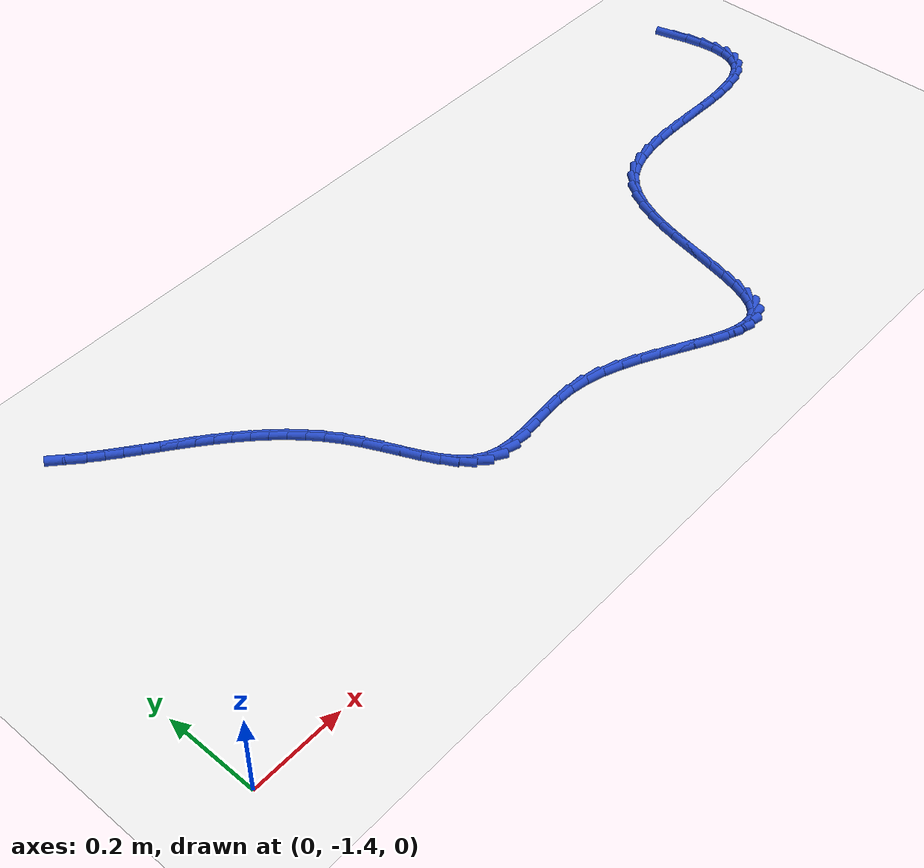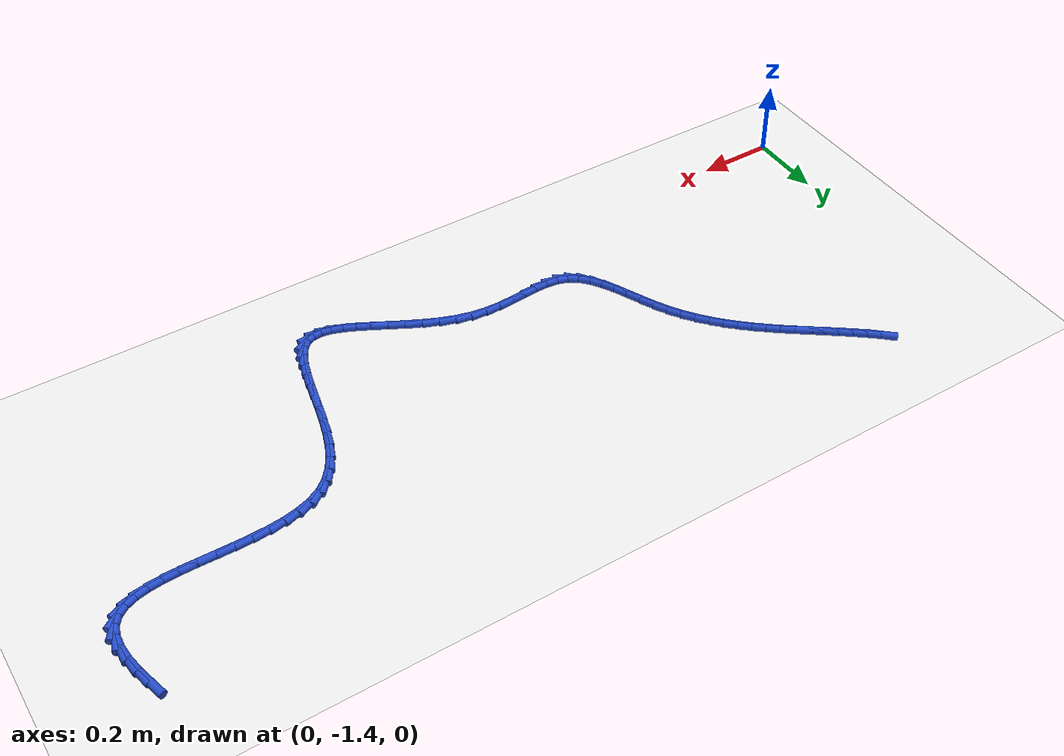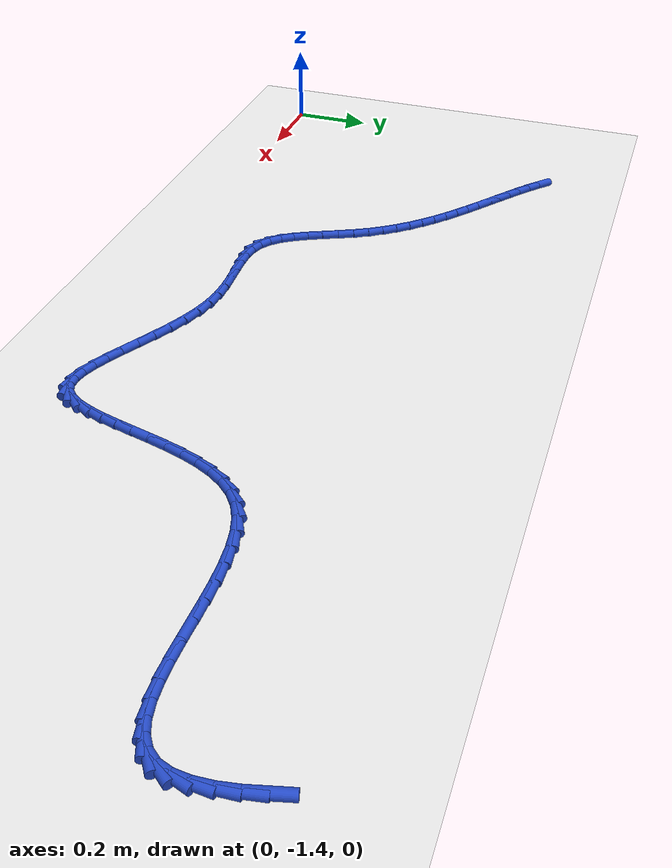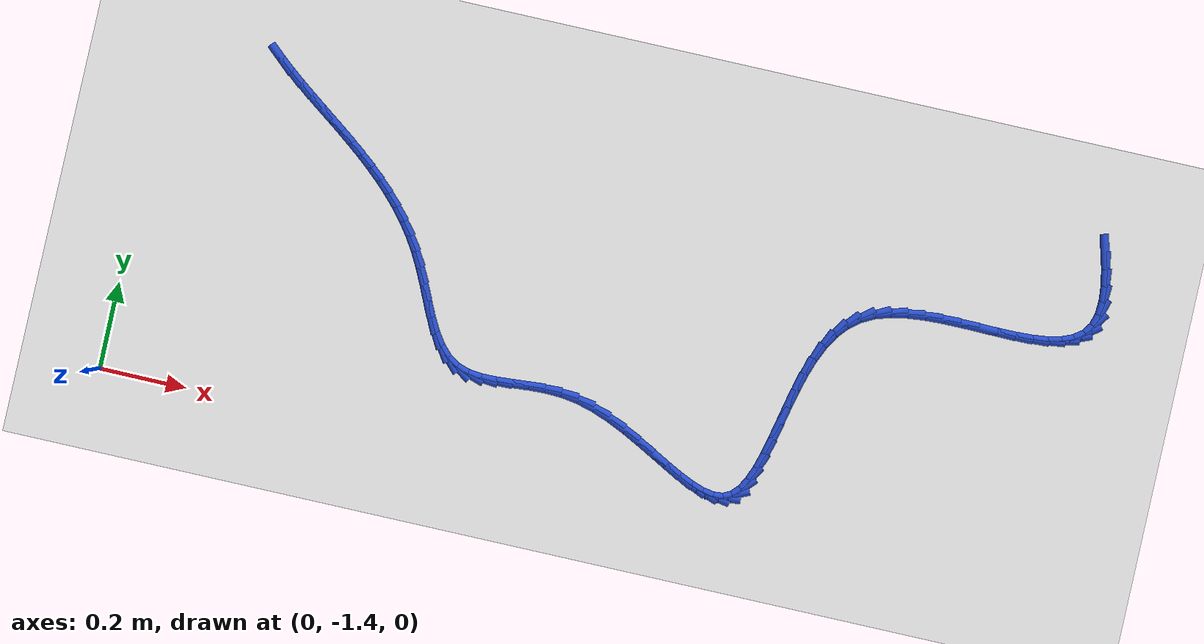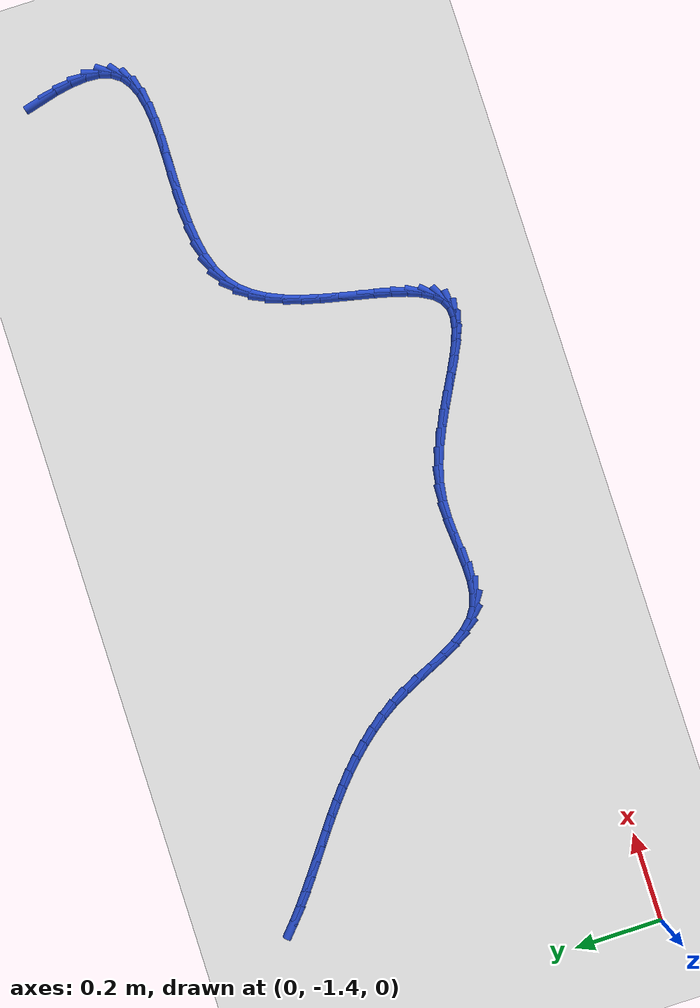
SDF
<sdf version="1.6">
 <world name="default">
  <model name="ground_plane">
   <static>1</static>
   <link name="link">
    <collision name="collision">
     <geometry><plane><normal>0 0 1</normal><size>100 100</size></plane></geometry>
     <surface><friction><ode><mu>100</mu><mu2>50</mu2></ode></friction></surface>
    </collision>
    <visual name="visual">
     <cast_shadows>0</cast_shadows>
     <geometry><plane><normal>0 0 1</normal><size>100 100</size></plane></geometry>
     <material>
      <script><uri>file://media/materials/scripts/gazebo.material</uri><name>Gazebo/WhiteGlow</name></script>
     </material>
    </visual>
   </link>
  </model>
  <model name="line">
   <link name="link_133">
    <pose>2.1537466226134705 -0.6418802313299397 0.01 0 1.57 -1.3056347034443903</pose>
    <collision name="collision">
     <geometry><cylinder><radius>0.01</radius><length>0.08</length></cylinder></geometry>
    </collision>
    <visual name="visual">
     <material>
      <script><name>Gazebo/Blue</name><uri>file://media/materials/scripts/gazebo.material</uri></script>
     </material>
     <geometry><cylinder><radius>0.01</radius><length>0.08</length></cylinder></geometry>
    </visual>
   </link>
   <link name="link_134">
    <pose>2.1640409524322584 -0.679788900097958 0.01 0 1.57 -1.3802247581851608</pose>
    <collision name="collision">
     <geometry><cylinder><radius>0.01</radius><length>0.08</length></cylinder></geometry>
    </collision>
    <visual name="visual">
     <material>
      <script><name>Gazebo/Blue</name><uri>file://media/materials/scripts/gazebo.material</uri></script>
     </material>
     <geometry><cylinder><radius>0.01</radius><length>0.08</length></cylinder></geometry>
    </visual>
   </link>
   <link name="link_135">
    <pose>2.1712782300741167 -0.7173047346959063 0.01 0 1.57 -1.4829774302239795</pose>
    <collision name="collision">
     <geometry><cylinder><radius>0.01</radius><length>0.08</length></cylinder></geometry>
    </collision>
    <visual name="visual">
     <material>
      <script><name>Gazebo/Blue</name><uri>file://media/materials/scripts/gazebo.material</uri></script>
     </material>
     <geometry><cylinder><radius>0.01</radius><length>0.08</length></cylinder></geometry>
    </visual>
   </link>
   <link name="link_136">
    <pose>2.1744094782992773 -0.7528687721009178 0.01 0 1.57 1.5077426891027257</pose>
    <collision name="collision">
     <geometry><cylinder><radius>0.01</radius><length>0.08</length></cylinder></geometry>
    </collision>
    <visual name="visual">
     <material>
      <script><name>Gazebo/Blue</name><uri>file://media/materials/scripts/gazebo.material</uri></script>
     </material>
     <geometry><cylinder><radius>0.01</radius><length>0.08</length></cylinder></geometry>
    </visual>
   </link>
   <link name="link_137">
    <pose>2.1723857198679744 -0.7849220492901284 0.01 0 1.57 1.274922022180767</pose>
    <collision name="collision">
     <geometry><cylinder><radius>0.01</radius><length>0.08</length></cylinder></geometry>
    </collision>
    <visual name="visual">
     <material>
      <script><name>Gazebo/Blue</name><uri>file://media/materials/scripts/gazebo.material</uri></script>
     </material>
     <geometry><cylinder><radius>0.01</radius><length>0.08</length></cylinder></geometry>
    </visual>
   </link>
   <link name="link_138">
    <pose>2.16415982929627 -0.8119079750838654 0.01 0 1.57 0.951115221271168</pose>
    <collision name="collision">
     <geometry><cylinder><radius>0.01</radius><length>0.08</length></cylinder></geometry>
    </collision>
    <visual name="visual">
     <material>
      <script><name>Gazebo/Blue</name><uri>file://media/materials/scripts/gazebo.material</uri></script>
     </material>
     <geometry><cylinder><radius>0.01</radius><length>0.08</length></cylinder></geometry>
    </visual>
   </link>
   <link name="link_139">
    <pose>2.1491802106205284 -0.8329046631052074 0.01 0 1.57 0.6352624273656253</pose>
    <collision name="collision">
     <geometry><cylinder><radius>0.01</radius><length>0.08</length></cylinder></geometry>
    </collision>
    <visual name="visual">
     <material>
      <script><name>Gazebo/Blue</name><uri>file://media/materials/scripts/gazebo.material</uri></script>
     </material>
     <geometry><cylinder><radius>0.01</radius><length>0.08</length></cylinder></geometry>
    </visual>
   </link>
   <link name="link_140">
    <pose>2.1280562923119994 -0.8484773387531183 0.01 0 1.57 0.39118199450994956</pose>
    <collision name="collision">
     <geometry><cylinder><radius>0.01</radius><length>0.08</length></cylinder></geometry>
    </collision>
    <visual name="visual">
     <material>
      <script><name>Gazebo/Blue</name><uri>file://media/materials/scripts/gazebo.material</uri></script>
     </material>
     <geometry><cylinder><radius>0.01</radius><length>0.08</length></cylinder></geometry>
    </visual>
   </link>
   <link name="link_141">
    <pose>2.101563563557912 -0.8594039282438881 0.01 0 1.57 0.2232752622472971</pose>
    <collision name="collision">
     <geometry><cylinder><radius>0.01</radius><length>0.08</length></cylinder></geometry>
    </collision>
    <visual name="visual">
     <material>
      <script><name>Gazebo/Blue</name><uri>file://media/materials/scripts/gazebo.material</uri></script>
     </material>
     <geometry><cylinder><radius>0.01</radius><length>0.08</length></cylinder></geometry>
    </visual>
   </link>
   <link name="link_142">
    <pose>2.07047751354549 -0.8664623577938069 0.01 0 1.57 0.11320318349492298</pose>
    <collision name="collision">
     <geometry><cylinder><radius>0.01</radius><length>0.08</length></cylinder></geometry>
    </collision>
    <visual name="visual">
     <material>
      <script><name>Gazebo/Blue</name><uri>file://media/materials/scripts/gazebo.material</uri></script>
     </material>
     <geometry><cylinder><radius>0.01</radius><length>0.08</length></cylinder></geometry>
    </visual>
   </link>
   <link name="link_143">
    <pose>2.0355736314619617 -0.8704305536191651 0.01 0 1.57 0.043610094030240944</pose>
    <collision name="collision">
     <geometry><cylinder><radius>0.01</radius><length>0.08</length></cylinder></geometry>
    </collision>
    <visual name="visual">
     <material>
      <script><name>Gazebo/Blue</name><uri>file://media/materials/scripts/gazebo.material</uri></script>
     </material>
     <geometry><cylinder><radius>0.01</radius><length>0.08</length></cylinder></geometry>
    </visual>
   </link>
   <link name="link_144">
    <pose>1.9976274064945503 -0.8720864419362525 0.01 0 1.57 0.0030215705775752996</pose>
    <collision name="collision">
     <geometry><cylinder><radius>0.01</radius><length>0.08</length></cylinder></geometry>
    </collision>
    <visual name="visual">
     <material>
      <script><name>Gazebo/Blue</name><uri>file://media/materials/scripts/gazebo.material</uri></script>
     </material>
     <geometry><cylinder><radius>0.01</radius><length>0.08</length></cylinder></geometry>
    </visual>
   </link>
   <link name="link_145">
    <pose>1.9574143278304852 -0.8722079489613597 0.01 0 1.57 -0.015223773511048446</pose>
    <collision name="collision">
     <geometry><cylinder><radius>0.01</radius><length>0.08</length></cylinder></geometry>
    </collision>
    <visual name="visual">
     <material>
      <script><name>Gazebo/Blue</name><uri>file://media/materials/scripts/gazebo.material</uri></script>
     </material>
     <geometry><cylinder><radius>0.01</radius><length>0.08</length></cylinder></geometry>
    </visual>
   </link>
   <link name="link_146">
    <pose>1.9157098846569915 -0.8715730009107765 0.01 0 1.57 -0.014460856694412853</pose>
    <collision name="collision">
     <geometry><cylinder><radius>0.01</radius><length>0.08</length></cylinder></geometry>
    </collision>
    <visual name="visual">
     <material>
      <script><name>Gazebo/Blue</name><uri>file://media/materials/scripts/gazebo.material</uri></script>
     </material>
     <geometry><cylinder><radius>0.01</radius><length>0.08</length></cylinder></geometry>
    </visual>
   </link>
   <link name="link_147">
    <pose>1.8732895661612945 -0.8709595240007932 0.01 0 1.57 0.004388955630817774</pose>
    <collision name="collision">
     <geometry><cylinder><radius>0.01</radius><length>0.08</length></cylinder></geometry>
    </collision>
    <visual name="visual">
     <material>
      <script><name>Gazebo/Blue</name><uri>file://media/materials/scripts/gazebo.material</uri></script>
     </material>
     <geometry><cylinder><radius>0.01</radius><length>0.08</length></cylinder></geometry>
    </visual>
   </link>
   <link name="link_148">
    <pose>1.8309288615306205 -0.8711454444476999 0.01 0 1.57 0.04243612121368443</pose>
    <collision name="collision">
     <geometry><cylinder><radius>0.01</radius><length>0.08</length></cylinder></geometry>
    </collision>
    <visual name="visual">
     <material>
      <script><name>Gazebo/Blue</name><uri>file://media/materials/scripts/gazebo.material</uri></script>
     </material>
     <geometry><cylinder><radius>0.01</radius><length>0.08</length></cylinder></geometry>
    </visual>
   </link>
   <link name="link_149">
    <pose>1.7894032599521963 -0.8729086884677867 0.01 0 1.57 0.10281773129148163</pose>
    <collision name="collision">
     <geometry><cylinder><radius>0.01</radius><length>0.08</length></cylinder></geometry>
    </collision>
    <visual name="visual">
     <material>
      <script><name>Gazebo/Blue</name><uri>file://media/materials/scripts/gazebo.material</uri></script>
     </material>
     <geometry><cylinder><radius>0.01</radius><length>0.08</length></cylinder></geometry>
    </visual>
   </link>
   <link name="link_150">
    <pose>1.7494882506132479 -0.8770271822773434 0.01 0 1.57 0.19087639671117715</pose>
    <collision name="collision">
     <geometry><cylinder><radius>0.01</radius><length>0.08</length></cylinder></geometry>
    </collision>
    <visual name="visual">
     <material>
      <script><name>Gazebo/Blue</name><uri>file://media/materials/scripts/gazebo.material</uri></script>
     </material>
     <geometry><cylinder><radius>0.01</radius><length>0.08</length></cylinder></geometry>
    </visual>
   </link>
   <link name="link_151">
    <pose>1.7119593227010022 -0.884278852092661 0.01 0 1.57 0.3140576909112532</pose>
    <collision name="collision">
     <geometry><cylinder><radius>0.01</radius><length>0.08</length></cylinder></geometry>
    </collision>
    <visual name="visual">
     <material>
      <script><name>Gazebo/Blue</name><uri>file://media/materials/scripts/gazebo.material</uri></script>
     </material>
     <geometry><cylinder><radius>0.01</radius><length>0.08</length></cylinder></geometry>
    </visual>
   </link>
   <link name="link_152">
    <pose>1.6775919654026836 -0.8954416241300288 0.01 0 1.57 0.48024448063198616</pose>
    <collision name="collision">
     <geometry><cylinder><radius>0.01</radius><length>0.08</length></cylinder></geometry>
    </collision>
    <visual name="visual">
     <material>
      <script><name>Gazebo/Blue</name><uri>file://media/materials/scripts/gazebo.material</uri></script>
     </material>
     <geometry><cylinder><radius>0.01</radius><length>0.08</length></cylinder></geometry>
    </visual>
   </link>
   <link name="link_153">
    <pose>1.6471616676566097 -0.9112934243527487 0.01 0 1.57 0.682370877430309</pose>
    <collision name="collision">
     <geometry><cylinder><radius>0.01</radius><length>0.08</length></cylinder></geometry>
    </collision>
    <visual name="visual">
     <material>
      <script><name>Gazebo/Blue</name><uri>file://media/materials/scripts/gazebo.material</uri></script>
     </material>
     <geometry><cylinder><radius>0.01</radius><length>0.08</length></cylinder></geometry>
    </visual>
   </link>
   <link name="link_154">
    <pose>1.6212138650071393 -0.9323783541835555 0.01 0 1.57 0.8719273073883838</pose>
    <collision name="collision">
     <geometry><cylinder><radius>0.01</radius><length>0.08</length></cylinder></geometry>
    </collision>
    <visual name="visual">
     <material>
      <script><name>Gazebo/Blue</name><uri>file://media/materials/scripts/gazebo.material</uri></script>
     </material>
     <geometry><cylinder><radius>0.01</radius><length>0.08</length></cylinder></geometry>
    </visual>
   </link>
   <link name="link_155">
    <pose>1.5994019697087545 -0.9583338692777076 0.01 0 1.57 1.0281323206443092</pose>
    <collision name="collision">
     <geometry><cylinder><radius>0.01</radius><length>0.08</length></cylinder></geometry>
    </collision>
    <visual name="visual">
     <material>
      <script><name>Gazebo/Blue</name><uri>file://media/materials/scripts/gazebo.material</uri></script>
     </material>
     <geometry><cylinder><radius>0.01</radius><length>0.08</length></cylinder></geometry>
    </visual>
   </link>
   <link name="link_156">
    <pose>1.581163221161723 -0.9885777088261687 0.01 0 1.57 1.149145606789475</pose>
    <collision name="collision">
     <geometry><cylinder><radius>0.01</radius><length>0.08</length></cylinder></geometry>
    </collision>
    <visual name="visual">
     <material>
      <script><name>Gazebo/Blue</name><uri>file://media/materials/scripts/gazebo.material</uri></script>
     </material>
     <geometry><cylinder><radius>0.01</radius><length>0.08</length></cylinder></geometry>
    </visual>
   </link>
   <link name="link_157">
    <pose>1.5659348587663113 -1.0225276120199023 0.01 0 1.57 1.2387844283992777</pose>
    <collision name="collision">
     <geometry><cylinder><radius>0.01</radius><length>0.08</length></cylinder></geometry>
    </collision>
    <visual name="visual">
     <material>
      <script><name>Gazebo/Blue</name><uri>file://media/materials/scripts/gazebo.material</uri></script>
     </material>
     <geometry><cylinder><radius>0.01</radius><length>0.08</length></cylinder></geometry>
    </visual>
   </link>
   <link name="link_158">
    <pose>1.5531540802134147 -1.059597591617268 0.01 0 1.57 1.300902866138402</pose>
    <collision name="collision">
     <geometry><cylinder><radius>0.01</radius><length>0.08</length></cylinder></geometry>
    </collision>
    <visual name="visual">
     <material>
      <script><name>Gazebo/Blue</name><uri>file://media/materials/scripts/gazebo.material</uri></script>
     </material>
     <geometry><cylinder><radius>0.01</radius><length>0.08</length></cylinder></geometry>
    </visual>
   </link>
   <link name="link_159">
    <pose>1.5422557419068035 -1.0989924831980165 0.01 0 1.57 1.3390138367171447</pose>
    <collision name="collision">
     <geometry><cylinder><radius>0.01</radius><length>0.08</length></cylinder></geometry>
    </collision>
    <visual name="visual">
     <material>
      <script><name>Gazebo/Blue</name><uri>file://media/materials/scripts/gazebo.material</uri></script>
     </material>
     <geometry><cylinder><radius>0.01</radius><length>0.08</length></cylinder></geometry>
    </visual>
   </link>
   <link name="link_160">
    <pose>1.532671161070322 -1.1396009220500445 0.01 0 1.57 1.3568441020129873</pose>
    <collision name="collision">
     <geometry><cylinder><radius>0.01</radius><length>0.08</length></cylinder></geometry>
    </collision>
    <visual name="visual">
     <material>
      <script><name>Gazebo/Blue</name><uri>file://media/materials/scripts/gazebo.material</uri></script>
     </material>
     <geometry><cylinder><radius>0.01</radius><length>0.08</length></cylinder></geometry>
    </visual>
   </link>
   <link name="link_161">
    <pose>1.523831360742858 -1.1802852601497034 0.01 0 1.57 1.3555215946864065</pose>
    <collision name="collision">
     <geometry><cylinder><radius>0.01</radius><length>0.08</length></cylinder></geometry>
    </collision>
    <visual name="visual">
     <material>
      <script><name>Gazebo/Blue</name><uri>file://media/materials/scripts/gazebo.material</uri></script>
     </material>
     <geometry><cylinder><radius>0.01</radius><length>0.08</length></cylinder></geometry>
    </visual>
   </link>
   <link name="link_162">
    <pose>1.5151673639632999 -1.2199078494733469 0.01 0 1.57 1.3333420079791676</pose>
    <collision name="collision">
     <geometry><cylinder><radius>0.01</radius><length>0.08</length></cylinder></geometry>
    </collision>
    <visual name="visual">
     <material>
      <script><name>Gazebo/Blue</name><uri>file://media/materials/scripts/gazebo.material</uri></script>
     </material>
     <geometry><cylinder><radius>0.01</radius><length>0.08</length></cylinder></geometry>
    </visual>
   </link>
   <link name="link_163">
    <pose>1.506110193770535 -1.2573310419973247 0.01 0 1.57 1.2849073615390159</pose>
    <collision name="collision">
     <geometry><cylinder><radius>0.01</radius><length>0.08</length></cylinder></geometry>
    </collision>
    <visual name="visual">
     <material>
      <script><name>Gazebo/Blue</name><uri>file://media/materials/scripts/gazebo.material</uri></script>
     </material>
     <geometry><cylinder><radius>0.01</radius><length>0.08</length></cylinder></geometry>
    </visual>
   </link>
   <link name="link_164">
    <pose>1.4960908732034524 -1.2914171896979898 0.01 0 1.57 1.198882200945937</pose>
    <collision name="collision">
     <geometry><cylinder><radius>0.01</radius><length>0.08</length></cylinder></geometry>
    </collision>
    <visual name="visual">
     <material>
      <script><name>Gazebo/Blue</name><uri>file://media/materials/scripts/gazebo.material</uri></script>
     </material>
     <geometry><cylinder><radius>0.01</radius><length>0.08</length></cylinder></geometry>
    </visual>
   </link>
   <link name="link_165">
    <pose>1.4845404253009402 -1.3210286445516954 0.01 0 1.57 1.0536385229514893</pose>
    <collision name="collision">
     <geometry><cylinder><radius>0.01</radius><length>0.08</length></cylinder></geometry>
    </collision>
    <visual name="visual">
     <material>
      <script><name>Gazebo/Blue</name><uri>file://media/materials/scripts/gazebo.material</uri></script>
     </material>
     <geometry><cylinder><radius>0.01</radius><length>0.08</length></cylinder></geometry>
    </visual>
   </link>
   <link name="link_166">
    <pose>1.470889873101886 -1.3450277585347934 0.01 0 1.57 0.813080277282421</pose>
    <collision name="collision">
     <geometry><cylinder><radius>0.01</radius><length>0.08</length></cylinder></geometry>
    </collision>
    <visual name="visual">
     <material>
      <script><name>Gazebo/Blue</name><uri>file://media/materials/scripts/gazebo.material</uri></script>
     </material>
     <geometry><cylinder><radius>0.01</radius><length>0.08</length></cylinder></geometry>
    </visual>
   </link>
   <link name="link_167">
    <pose>1.454570239645179 -1.3622768836236345 0.01 0 1.57 0.45141391494569444</pose>
    <collision name="collision">
     <geometry><cylinder><radius>0.01</radius><length>0.08</length></cylinder></geometry>
    </collision>
    <visual name="visual">
     <material>
      <script><name>Gazebo/Blue</name><uri>file://media/materials/scripts/gazebo.material</uri></script>
     </material>
     <geometry><cylinder><radius>0.01</radius><length>0.08</length></cylinder></geometry>
    </visual>
   </link>
   <link name="link_168">
    <pose>1.4350506480031302 -1.3717399835958548 0.01 0 1.57 0.08431067364155885</pose>
    <collision name="collision">
     <geometry><cylinder><radius>0.01</radius><length>0.08</length></cylinder></geometry>
    </collision>
    <visual name="visual">
     <material>
      <script><name>Gazebo/Blue</name><uri>file://media/materials/scripts/gazebo.material</uri></script>
     </material>
     <geometry><cylinder><radius>0.01</radius><length>0.08</length></cylinder></geometry>
    </visual>
   </link>
   <link name="link_169">
    <pose>1.4122813717576201 -1.3736642381628372 0.01 0 1.57 -0.1726440783970736</pose>
    <collision name="collision">
     <geometry><cylinder><radius>0.01</radius><length>0.08</length></cylinder></geometry>
    </collision>
    <visual name="visual">
     <material>
      <script><name>Gazebo/Blue</name><uri>file://media/materials/scripts/gazebo.material</uri></script>
     </material>
     <geometry><cylinder><radius>0.01</radius><length>0.08</length></cylinder></geometry>
    </visual>
   </link>
   <link name="link_170">
    <pose>1.3865422817054798 -1.369175854262442 0.01 0 1.57 -0.33069998500179243</pose>
    <collision name="collision">
     <geometry><cylinder><radius>0.01</radius><length>0.08</length></cylinder></geometry>
    </collision>
    <visual name="visual">
     <material>
      <script><name>Gazebo/Blue</name><uri>file://media/materials/scripts/gazebo.material</uri></script>
     </material>
     <geometry><cylinder><radius>0.01</radius><length>0.08</length></cylinder></geometry>
    </visual>
   </link>
   <link name="link_171">
    <pose>1.3581196715488089 -1.3594181685543418 0.01 0 1.57 -0.42325115853130213</pose>
    <collision name="collision">
     <geometry><cylinder><radius>0.01</radius><length>0.08</length></cylinder></geometry>
    </collision>
    <visual name="visual">
     <material>
      <script><name>Gazebo/Blue</name><uri>file://media/materials/scripts/gazebo.material</uri></script>
     </material>
     <geometry><cylinder><radius>0.01</radius><length>0.08</length></cylinder></geometry>
    </visual>
   </link>
   <link name="link_172">
    <pose>1.3272998349897038 -1.3455345176982092 0.01 0 1.57 -0.4733392018274655</pose>
    <collision name="collision">
     <geometry><cylinder><radius>0.01</radius><length>0.08</length></cylinder></geometry>
    </collision>
    <visual name="visual">
     <material>
      <script><name>Gazebo/Blue</name><uri>file://media/materials/scripts/gazebo.material</uri></script>
     </material>
     <geometry><cylinder><radius>0.01</radius><length>0.08</length></cylinder></geometry>
    </visual>
   </link>
   <link name="link_173">
    <pose>1.294369065730264 -1.328668238353717 0.01 0 1.57 -0.4937432896271615</pose>
    <collision name="collision">
     <geometry><cylinder><radius>0.01</radius><length>0.08</length></cylinder></geometry>
    </collision>
    <visual name="visual">
     <material>
      <script><name>Gazebo/Blue</name><uri>file://media/materials/scripts/gazebo.material</uri></script>
     </material>
     <geometry><cylinder><radius>0.01</radius><length>0.08</length></cylinder></geometry>
    </visual>
   </link>
   <link name="link_174">
    <pose>1.2596136574725862 -1.309962667180537 0.01 0 1.57 -0.4909190882445927</pose>
    <collision name="collision">
     <geometry><cylinder><radius>0.01</radius><length>0.08</length></cylinder></geometry>
    </collision>
    <visual name="visual">
     <material>
      <script><name>Gazebo/Blue</name><uri>file://media/materials/scripts/gazebo.material</uri></script>
     </material>
     <geometry><cylinder><radius>0.01</radius><length>0.08</length></cylinder></geometry>
    </visual>
   </link>
   <link name="link_175">
    <pose>1.2233199039187683 -1.2905611408383424 0.01 0 1.57 -0.4675019324590313</pose>
    <collision name="collision">
     <geometry><cylinder><radius>0.01</radius><length>0.08</length></cylinder></geometry>
    </collision>
    <visual name="visual">
     <material>
      <script><name>Gazebo/Blue</name><uri>file://media/materials/scripts/gazebo.material</uri></script>
     </material>
     <geometry><cylinder><radius>0.01</radius><length>0.08</length></cylinder></geometry>
    </visual>
   </link>
   <link name="link_176">
    <pose>1.1857740987709096 -1.2716069959868066 0.01 0 1.57 -0.4235711037315435</pose>
    <collision name="collision">
     <geometry><cylinder><radius>0.01</radius><length>0.08</length></cylinder></geometry>
    </collision>
    <visual name="visual">
     <material>
      <script><name>Gazebo/Blue</name><uri>file://media/materials/scripts/gazebo.material</uri></script>
     </material>
     <geometry><cylinder><radius>0.01</radius><length>0.08</length></cylinder></geometry>
    </visual>
   </link>
   <link name="link_177">
    <pose>1.1472625357311073 -1.2542435692856009 0.01 0 1.57 -0.3572651258891091</pose>
    <collision name="collision">
     <geometry><cylinder><radius>0.01</radius><length>0.08</length></cylinder></geometry>
    </collision>
    <visual name="visual">
     <material>
      <script><name>Gazebo/Blue</name><uri>file://media/materials/scripts/gazebo.material</uri></script>
     </material>
     <geometry><cylinder><radius>0.01</radius><length>0.08</length></cylinder></geometry>
    </visual>
   </link>
   <link name="link_178">
    <pose>1.1080715085014599 -1.2396141973943993 0.01 0 1.57 -0.2652239825873468</pose>
    <collision name="collision">
     <geometry><cylinder><radius>0.01</radius><length>0.08</length></cylinder></geometry>
    </collision>
    <visual name="visual">
     <material>
      <script><name>Gazebo/Blue</name><uri>file://media/materials/scripts/gazebo.material</uri></script>
     </material>
     <geometry><cylinder><radius>0.01</radius><length>0.08</length></cylinder></geometry>
    </visual>
   </link>
   <link name="link_179">
    <pose>1.0684873107840638 -1.2288622169728727 0.01 0 1.57 -0.14534542295010144</pose>
    <collision name="collision">
     <geometry><cylinder><radius>0.01</radius><length>0.08</length></cylinder></geometry>
    </collision>
    <visual name="visual">
     <material>
      <script><name>Gazebo/Blue</name><uri>file://media/materials/scripts/gazebo.material</uri></script>
     </material>
     <geometry><cylinder><radius>0.01</radius><length>0.08</length></cylinder></geometry>
    </visual>
   </link>
   <link name="link_180">
    <pose>1.028801422652577 -1.2230530905530759 0.01 0 1.57 -0.03142340082379187</pose>
    <collision name="collision">
     <geometry><cylinder><radius>0.01</radius><length>0.08</length></cylinder></geometry>
    </collision>
    <visual name="visual">
     <material>
      <script><name>Gazebo/Blue</name><uri>file://media/materials/scripts/gazebo.material</uri></script>
     </material>
     <geometry><cylinder><radius>0.01</radius><length>0.08</length></cylinder></geometry>
    </visual>
   </link>
   <link name="link_181">
    <pose>0.9894010735473594 -1.221814589919432 0.01 0 1.57 0.0438299174204052</pose>
    <collision name="collision">
     <geometry><cylinder><radius>0.01</radius><length>0.08</length></cylinder></geometry>
    </collision>
    <visual name="visual">
     <material>
      <script><name>Gazebo/Blue</name><uri>file://media/materials/scripts/gazebo.material</uri></script>
     </material>
     <geometry><cylinder><radius>0.01</radius><length>0.08</length></cylinder></geometry>
    </visual>
   </link>
   <link name="link_182">
    <pose>0.9507577463452553 -1.2235094091826715 0.01 0 1.57 0.07862681077505879</pose>
    <collision name="collision">
     <geometry><cylinder><radius>0.01</radius><length>0.08</length></cylinder></geometry>
    </collision>
    <visual name="visual">
     <material>
      <script><name>Gazebo/Blue</name><uri>file://media/materials/scripts/gazebo.material</uri></script>
     </material>
     <geometry><cylinder><radius>0.01</radius><length>0.08</length></cylinder></geometry>
    </visual>
   </link>
   <link name="link_183">
    <pose>0.9133457993110763 -1.2264570680825806 0.01 0 1.57 0.0704596408452522</pose>
    <collision name="collision">
     <geometry><cylinder><radius>0.01</radius><length>0.08</length></cylinder></geometry>
    </collision>
    <visual name="visual">
     <material>
      <script><name>Gazebo/Blue</name><uri>file://media/materials/scripts/gazebo.material</uri></script>
     </material>
     <geometry><cylinder><radius>0.01</radius><length>0.08</length></cylinder></geometry>
    </visual>
   </link>
   <link name="link_184">
    <pose>0.8776395907096336 -1.228977086358946 0.01 0 1.57 0.012285250117308489</pose>
    <collision name="collision">
     <geometry><cylinder><radius>0.01</radius><length>0.08</length></cylinder></geometry>
    </collision>
    <visual name="visual">
     <material>
      <script><name>Gazebo/Blue</name><uri>file://media/materials/scripts/gazebo.material</uri></script>
     </material>
     <geometry><cylinder><radius>0.01</radius><length>0.08</length></cylinder></geometry>
    </visual>
   </link>
   <link name="link_185">
    <pose>0.8441134788057401 -1.2293889837515515 0.01 0 1.57 -0.10894567881204963</pose>
    <collision name="collision">
     <geometry><cylinder><radius>0.01</radius><length>0.08</length></cylinder></geometry>
    </collision>
    <visual name="visual">
     <material>
      <script><name>Gazebo/Blue</name><uri>file://media/materials/scripts/gazebo.material</uri></script>
     </material>
     <geometry><cylinder><radius>0.01</radius><length>0.08</length></cylinder></geometry>
    </visual>
   </link>
   <link name="link_186">
    <pose>0.8132418218642063 -1.2260122800001843 0.01 0 1.57 -0.3086587452621194</pose>
    <collision name="collision">
     <geometry><cylinder><radius>0.01</radius><length>0.08</length></cylinder></geometry>
    </collision>
    <visual name="visual">
     <material>
      <script><name>Gazebo/Blue</name><uri>file://media/materials/scripts/gazebo.material</uri></script>
     </material>
     <geometry><cylinder><radius>0.01</radius><length>0.08</length></cylinder></geometry>
    </visual>
   </link>
   <link name="link_187">
    <pose>0.785498978149844 -1.2171664948446304 0.01 0 1.57 -0.5768095208497112</pose>
    <collision name="collision">
     <geometry><cylinder><radius>0.01</radius><length>0.08</length></cylinder></geometry>
    </collision>
    <visual name="visual">
     <material>
      <script><name>Gazebo/Blue</name><uri>file://media/materials/scripts/gazebo.material</uri></script>
     </material>
     <geometry><cylinder><radius>0.01</radius><length>0.08</length></cylinder></geometry>
    </visual>
   </link>
   <link name="link_188">
    <pose>0.7612654794599322 -1.2013997452032605 0.01 0 1.57 -0.8123557060473808</pose>
    <collision name="collision">
     <geometry><cylinder><radius>0.01</radius><length>0.08</length></cylinder></geometry>
    </collision>
    <visual name="visual">
     <material>
      <script><name>Gazebo/Blue</name><uri>file://media/materials/scripts/gazebo.material</uri></script>
     </material>
     <geometry><cylinder><radius>0.01</radius><length>0.08</length></cylinder></geometry>
    </visual>
   </link>
   <link name="link_189">
    <pose>0.7401576455554494 -1.1791220609485822 0.01 0 1.57 -0.9721881361971921</pose>
    <collision name="collision">
     <geometry><cylinder><radius>0.01</radius><length>0.08</length></cylinder></geometry>
    </collision>
    <visual name="visual">
     <material>
      <script><name>Gazebo/Blue</name><uri>file://media/materials/scripts/gazebo.material</uri></script>
     </material>
     <geometry><cylinder><radius>0.01</radius><length>0.08</length></cylinder></geometry>
    </visual>
   </link>
   <link name="link_190">
    <pose>0.721419476003354 -1.1516505864179394 0.01 0 1.57 -1.0706790543695301</pose>
    <collision name="collision">
     <geometry><cylinder><radius>0.01</radius><length>0.08</length></cylinder></geometry>
    </collision>
    <visual name="visual">
     <material>
      <script><name>Gazebo/Blue</name><uri>file://media/materials/scripts/gazebo.material</uri></script>
     </material>
     <geometry><cylinder><radius>0.01</radius><length>0.08</length></cylinder></geometry>
    </visual>
   </link>
   <link name="link_191">
    <pose>0.704292472110007 -1.1203085526674752 0.01 0 1.57 -1.1230978618753504</pose>
    <collision name="collision">
     <geometry><cylinder><radius>0.01</radius><length>0.08</length></cylinder></geometry>
    </collision>
    <visual name="visual">
     <material>
      <script><name>Gazebo/Blue</name><uri>file://media/materials/scripts/gazebo.material</uri></script>
     </material>
     <geometry><cylinder><radius>0.01</radius><length>0.08</length></cylinder></geometry>
    </visual>
   </link>
   <link name="link_192">
    <pose>0.6880181351817697 -1.0864191907533332 0.01 0 1.57 -1.1390001633513909</pose>
    <collision name="collision">
     <geometry><cylinder><radius>0.01</radius><length>0.08</length></cylinder></geometry>
    </collision>
    <visual name="visual">
     <material>
      <script><name>Gazebo/Blue</name><uri>file://media/materials/scripts/gazebo.material</uri></script>
     </material>
     <geometry><cylinder><radius>0.01</radius><length>0.08</length></cylinder></geometry>
    </visual>
   </link>
   <link name="link_193">
    <pose>0.6718379665250043 -1.0513057317316583 0.01 0 1.57 -1.12240342102055</pose>
    <collision name="collision">
     <geometry><cylinder><radius>0.01</radius><length>0.08</length></cylinder></geometry>
    </collision>
    <visual name="visual">
     <material>
      <script><name>Gazebo/Blue</name><uri>file://media/materials/scripts/gazebo.material</uri></script>
     </material>
     <geometry><cylinder><radius>0.01</radius><length>0.08</length></cylinder></geometry>
    </visual>
   </link>
   <link name="link_194">
    <pose>0.6549934674460721 -1.0162914066585942 0.01 0 1.57 -1.0730720289212863</pose>
    <collision name="collision">
     <geometry><cylinder><radius>0.01</radius><length>0.08</length></cylinder></geometry>
    </collision>
    <visual name="visual">
     <material>
      <script><name>Gazebo/Blue</name><uri>file://media/materials/scripts/gazebo.material</uri></script>
     </material>
     <geometry><cylinder><radius>0.01</radius><length>0.08</length></cylinder></geometry>
    </visual>
   </link>
   <link name="link_195">
    <pose>0.6367341802707167 -0.9826864664202674 0.01 0 1.57 -1.0037552422696134</pose>
    <collision name="collision">
     <geometry><cylinder><radius>0.01</radius><length>0.08</length></cylinder></geometry>
    </collision>
    <visual name="visual">
     <material>
      <script><name>Gazebo/Blue</name><uri>file://media/materials/scripts/gazebo.material</uri></script>
     </material>
     <geometry><cylinder><radius>0.01</radius><length>0.08</length></cylinder></geometry>
    </visual>
   </link>
   <link name="link_196">
    <pose>0.6166827883895355 -0.9511988210513097 0.01 0 1.57 -0.9367351557027394</pose>
    <collision name="collision">
     <geometry><cylinder><radius>0.01</radius><length>0.08</length></cylinder></geometry>
    </collision>
    <visual name="visual">
     <material>
      <script><name>Gazebo/Blue</name><uri>file://media/materials/scripts/gazebo.material</uri></script>
     </material>
     <geometry><cylinder><radius>0.01</radius><length>0.08</length></cylinder></geometry>
    </visual>
   </link>
   <link name="link_197">
    <pose>0.5949849611931101 -0.9216921533966272 0.01 0 1.57 -0.8748829532743247</pose>
    <collision name="collision">
     <geometry><cylinder><radius>0.01</radius><length>0.08</length></cylinder></geometry>
    </collision>
    <visual name="visual">
     <material>
      <script><name>Gazebo/Blue</name><uri>file://media/materials/scripts/gazebo.material</uri></script>
     </material>
     <geometry><cylinder><radius>0.01</radius><length>0.08</length></cylinder></geometry>
    </visual>
   </link>
   <link name="link_198">
    <pose>0.5718254529209024 -0.8939670538050932 0.01 0 1.57 -0.8191245379575189</pose>
    <collision name="collision">
     <geometry><cylinder><radius>0.01</radius><length>0.08</length></cylinder></geometry>
    </collision>
    <visual name="visual">
     <material>
      <script><name>Gazebo/Blue</name><uri>file://media/materials/scripts/gazebo.material</uri></script>
     </material>
     <geometry><cylinder><radius>0.01</radius><length>0.08</length></cylinder></geometry>
    </visual>
   </link>
   <link name="link_199">
    <pose>0.5473890178123737 -0.8678241126255789 0.01 0 1.57 -0.7701193042860746</pose>
    <collision name="collision">
     <geometry><cylinder><radius>0.01</radius><length>0.08</length></cylinder></geometry>
    </collision>
    <visual name="visual">
     <material>
      <script><name>Gazebo/Blue</name><uri>file://media/materials/scripts/gazebo.material</uri></script>
     </material>
     <geometry><cylinder><radius>0.01</radius><length>0.08</length></cylinder></geometry>
    </visual>
   </link>
   <link name="link_200">
    <pose>0.5218604101069858 -0.8430639202069569 0.01 0 1.57 -0.7282915932446741</pose>
    <collision name="collision">
     <geometry><cylinder><radius>0.01</radius><length>0.08</length></cylinder></geometry>
    </collision>
    <visual name="visual">
     <material>
      <script><name>Gazebo/Blue</name><uri>file://media/materials/scripts/gazebo.material</uri></script>
     </material>
     <geometry><cylinder><radius>0.01</radius><length>0.08</length></cylinder></geometry>
    </visual>
   </link>
   <link name="link_201">
    <pose>0.49542438404419864 -0.8194870668980979 0.01 0 1.57 -0.693883280130096</pose>
    <collision name="collision">
     <geometry><cylinder><radius>0.01</radius><length>0.08</length></cylinder></geometry>
    </collision>
    <visual name="visual">
     <material>
      <script><name>Gazebo/Blue</name><uri>file://media/materials/scripts/gazebo.material</uri></script>
     </material>
     <geometry><cylinder><radius>0.01</radius><length>0.08</length></cylinder></geometry>
    </visual>
   </link>
   <link name="link_202">
    <pose>0.4682656938634755 -0.7968941430478756 0.01 0 1.57 -0.6670129099494876</pose>
    <collision name="collision">
     <geometry><cylinder><radius>0.01</radius><length>0.08</length></cylinder></geometry>
    </collision>
    <visual name="visual">
     <material>
      <script><name>Gazebo/Blue</name><uri>file://media/materials/scripts/gazebo.material</uri></script>
     </material>
     <geometry><cylinder><radius>0.01</radius><length>0.08</length></cylinder></geometry>
    </visual>
   </link>
   <link name="link_203">
    <pose>0.4405690938042769 -0.7750857390051612 0.01 0 1.57 -0.6477309868173454</pose>
    <collision name="collision">
     <geometry><cylinder><radius>0.01</radius><length>0.08</length></cylinder></geometry>
    </collision>
    <visual name="visual">
     <material>
      <script><name>Gazebo/Blue</name><uri>file://media/materials/scripts/gazebo.material</uri></script>
     </material>
     <geometry><cylinder><radius>0.01</radius><length>0.08</length></cylinder></geometry>
    </visual>
   </link>
   <link name="link_204">
    <pose>0.41251933810606456 -0.7538624451188272 0.01 0 1.57 -0.6360656342753611</pose>
    <collision name="collision">
     <geometry><cylinder><radius>0.01</radius><length>0.08</length></cylinder></geometry>
    </collision>
    <visual name="visual">
     <material>
      <script><name>Gazebo/Blue</name><uri>file://media/materials/scripts/gazebo.material</uri></script>
     </material>
     <geometry><cylinder><radius>0.01</radius><length>0.08</length></cylinder></geometry>
    </visual>
   </link>
   <link name="link_205">
    <pose>0.3843011810082996 -0.733024851737745 0.01 0 1.57 -0.6320562560695435</pose>
    <collision name="collision">
     <geometry><cylinder><radius>0.01</radius><length>0.08</length></cylinder></geometry>
    </collision>
    <visual name="visual">
     <material>
      <script><name>Gazebo/Blue</name><uri>file://media/materials/scripts/gazebo.material</uri></script>
     </material>
     <geometry><cylinder><radius>0.01</radius><length>0.08</length></cylinder></geometry>
    </visual>
   </link>
   <link name="link_206">
    <pose>0.3560993767504426 -0.7123735492107865 0.01 0 1.57 -0.6357746146249099</pose>
    <collision name="collision">
     <geometry><cylinder><radius>0.01</radius><length>0.08</length></cylinder></geometry>
    </collision>
    <visual name="visual">
     <material>
      <script><name>Gazebo/Blue</name><uri>file://media/materials/scripts/gazebo.material</uri></script>
     </material>
     <geometry><cylinder><radius>0.01</radius><length>0.08</length></cylinder></geometry>
    </visual>
   </link>
   <link name="link_207">
    <pose>0.3280986795719569 -0.6917091278868249 0.01 0 1.57 -0.6473331471782748</pose>
    <collision name="collision">
     <geometry><cylinder><radius>0.01</radius><length>0.08</length></cylinder></geometry>
    </collision>
    <visual name="visual">
     <material>
      <script><name>Gazebo/Blue</name><uri>file://media/materials/scripts/gazebo.material</uri></script>
     </material>
     <geometry><cylinder><radius>0.01</radius><length>0.08</length></cylinder></geometry>
    </visual>
   </link>
   <link name="link_208">
    <pose>0.30048384371230286 -0.6708321781147317 0.01 0 1.57 -0.6668798274531453</pose>
    <collision name="collision">
     <geometry><cylinder><radius>0.01</radius><length>0.08</length></cylinder></geometry>
    </collision>
    <visual name="visual">
     <material>
      <script><name>Gazebo/Blue</name><uri>file://media/materials/scripts/gazebo.material</uri></script>
     </material>
     <geometry><cylinder><radius>0.01</radius><length>0.08</length></cylinder></geometry>
    </visual>
   </link>
   <link name="link_209">
    <pose>0.27343962341094186 -0.6495432902433788 0.01 0 1.57 -0.6945779719608876</pose>
    <collision name="collision">
     <geometry><cylinder><radius>0.01</radius><length>0.08</length></cylinder></geometry>
    </collision>
    <visual name="visual">
     <material>
      <script><name>Gazebo/Blue</name><uri>file://media/materials/scripts/gazebo.material</uri></script>
     </material>
     <geometry><cylinder><radius>0.01</radius><length>0.08</length></cylinder></geometry>
    </visual>
   </link>
   <link name="link_210">
    <pose>0.24715077290733475 -0.6276430546216374 0.01 0 1.57 -0.7305686784820211</pose>
    <collision name="collision">
     <geometry><cylinder><radius>0.01</radius><length>0.08</length></cylinder></geometry>
    </collision>
    <visual name="visual">
     <material>
      <script><name>Gazebo/Blue</name><uri>file://media/materials/scripts/gazebo.material</uri></script>
     </material>
     <geometry><cylinder><radius>0.01</radius><length>0.08</length></cylinder></geometry>
    </visual>
   </link>
  </model>
 </world>
</sdf>
